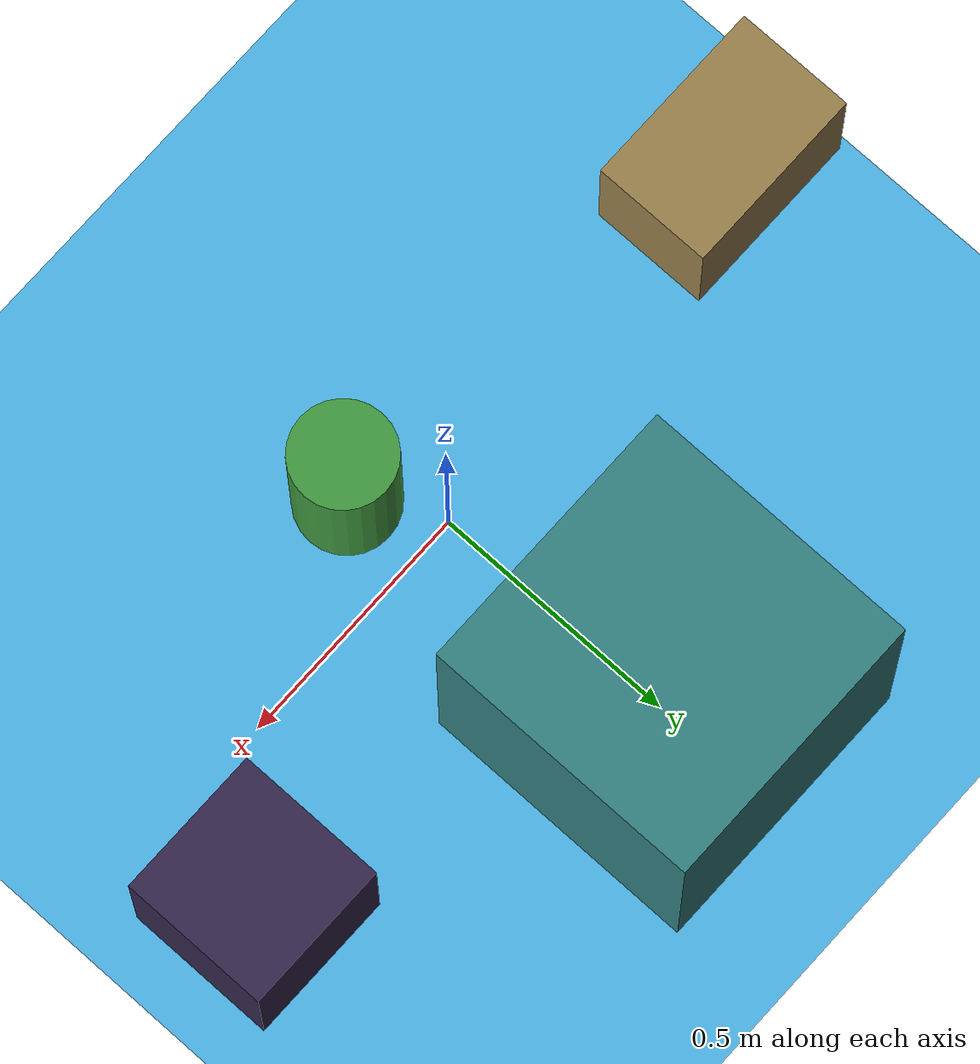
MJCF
<mujoco>
   <asset>
<texture type="skybox" builtin="gradient" rgb1="0.7 0.7 0.8" rgb2="0.9 0.9 0.9" width="256" height="256"/>
<texture name="gradient_0" builtin="gradient" rgb1="0.8 0.6 0.5" rgb2="0.4 0.4 0.1" width="200" height="200"/>
<texture name="gradient_1" builtin="gradient" rgb1="0.1 0.2 0.2" rgb2="0.3 0.1 0.4" width="200" height="200"/>
<texture name="checker_2" builtin="checker" type="2d" rgb1="0.5 0.4 0.5" rgb2="0.0 0.8 0.0" width="200" height="200"/>
<texture name="flat_3" builtin="flat" rgb1="0.2 0.5 0.5" rgb2="0.2 0.5 0.5"  width="200" height="200"/><material name="gradient_0_mat" reflectance="0" texture="gradient_0" texuniform="true"/>
<material name="gradient_1_mat" reflectance="0" texture="gradient_1" texuniform="true"/>
<material name="checker_2_mat" reflectance="0" texrepeat="8 8" texture="checker_2" texuniform="false" />
<material name="flat_3_mat" reflectance="0" texture="flat_3" texuniform="true"/>
   </asset>

   <worldbody>
      <light diffuse=".9 .9 .9" pos="0 0 3" dir="0 0 -1"/>
     <geom type="plane" size="1 1 0.1" rgba="0.3 0.7 0.9 1"/>
<geom type="box" pos="-0.79 -0.06 0.14" size="0.19 0.12 0.14" material="gradient_0_mat" />
<geom type="box" pos="0.74 0.22 0.15" size="0.15 0.15 0.15" material="gradient_1_mat" />
<geom type="cylinder" pos="0.09 -0.16 0.17" size="0.1 0.17 0.17" material="checker_2_mat" />
<geom type="box" pos="0.0 0.51 0.28" size="0.28 0.28 0.28" material="flat_3_mat" /><camera euler="60 0 180" fovy="60" name="camera_a" pos="0 -1.5 1"></camera>   </worldbody>
</mujoco>
